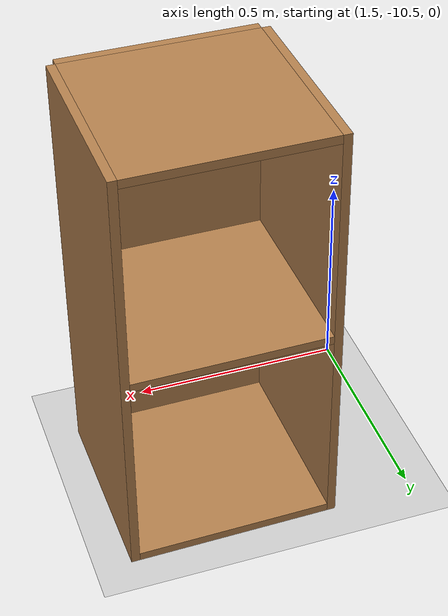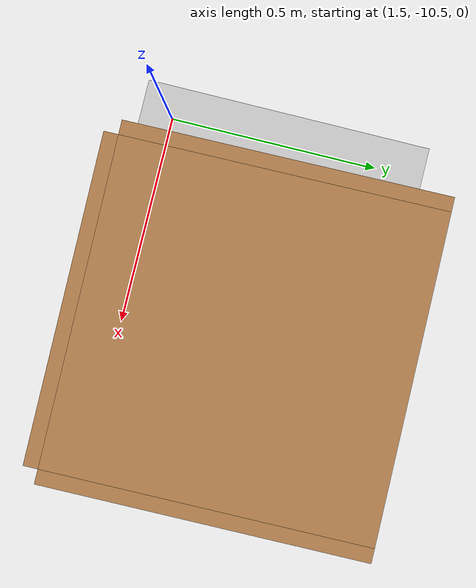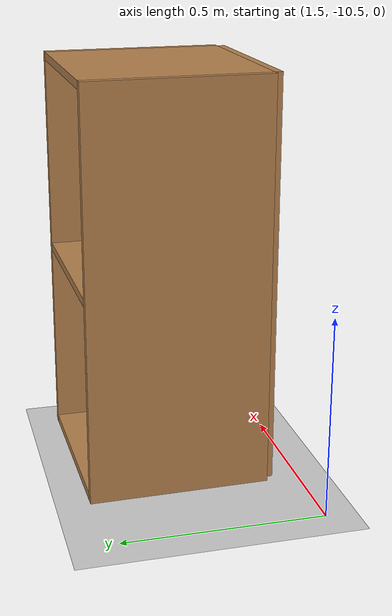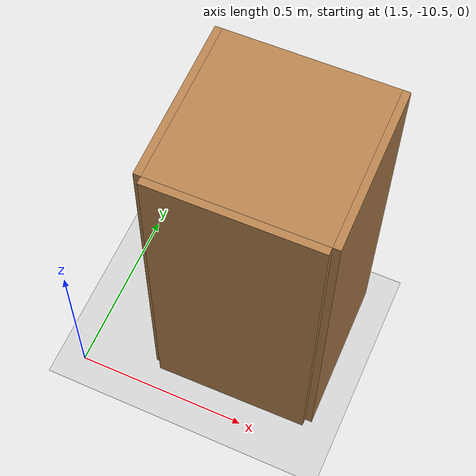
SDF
<sdf version="1.6">
 <world name="default">
  <model name="ground_plane">
   <static>1</static>
   <link name="link">
    <collision name="collision">
     <geometry><plane><normal>0 0 1</normal><size>100 100</size></plane></geometry>
     <surface><friction><ode><mu>100</mu><mu2>50</mu2></ode></friction></surface>
    </collision>
    <visual name="visual">
     <cast_shadows>0</cast_shadows>
     <geometry><plane><normal>0 0 1</normal><size>100 100</size></plane></geometry>
     <material>
      <script><uri>file://media/materials/scripts/gazebo.material</uri><name>Gazebo/Grey</name></script>
     </material>
    </visual>
   </link>
  </model>
  <model name="cabinet_3_clone_clone">
   <static>1</static>
   <link name="cabinet_bottom_plate">
    <inertial>
     <pose>0 0 -1 0 -0 0</pose>
     <inertia><ixx>2.05</ixx><ixy>0</ixy><ixz>0</ixz><iyy>2.05</iyy><iyz>0</iyz><izz>2.05</izz></inertia>
     <mass>25</mass>
    </inertial>
    <collision name="cabinet_bottom_plate_geom">
     <pose>0 0 0.01 0 -0 0</pose>
     <geometry><box><size>0.45 0.45 0.02</size></box></geometry>
    </collision>
    <visual name="cabinet_bottom_plate_geom_visual">
     <pose>0 0 0.01 0 -0 0</pose>
     <geometry><box><size>0.45 0.45 0.02</size></box></geometry>
     <material>
      <script><uri>file://media/materials/scripts/gazebo.material</uri><name>Gazebo/Wood</name></script>
     </material>
    </visual>
    <collision name="cabinet_bottom_plate_geom_cabinet_back_plate">
     <pose>0.235 0 0.51 0 -0 0</pose>
     <geometry><box><size>0.02 0.45 1.02</size></box></geometry>
    </collision>
    <visual name="cabinet_bottom_plate_geom_cabinet_back_plate_visual">
     <pose>0.235 0 0.51 0 -0 0</pose>
     <geometry><box><size>0.02 0.45 1.02</size></box></geometry>
     <material>
      <script><uri>file://media/materials/scripts/gazebo.material</uri><name>Gazebo/Wood</name></script>
     </material>
    </visual>
    <collision name="cabinet_bottom_plate_geom_cabinet_left_plate">
     <pose>0 0.235 0.51 0 -0 0</pose>
     <geometry><box><size>0.45 0.02 1.02</size></box></geometry>
    </collision>
    <visual name="cabinet_bottom_plate_geom_cabinet_left_plate_visual">
     <pose>0 0.235 0.51 0 -0 0</pose>
     <geometry><box><size>0.45 0.02 1.02</size></box></geometry>
     <material>
      <script><uri>file://media/materials/scripts/gazebo.material</uri><name>Gazebo/Wood</name></script>
     </material>
    </visual>
    <collision name="cabinet_bottom_plate_geom_cabinet_middle_plate">
     <pose>0 0 0.51 0 -0 0</pose>
     <geometry><box><size>0.45 0.45 0.02</size></box></geometry>
    </collision>
    <visual name="cabinet_bottom_plate_geom_cabinet_middle_plate_visual">
     <pose>0 0 0.51 0 -0 0</pose>
     <geometry><box><size>0.45 0.45 0.02</size></box></geometry>
     <material>
      <script><uri>file://media/materials/scripts/gazebo.material</uri><name>Gazebo/Wood</name></script>
     </material>
    </visual>
    <collision name="cabinet_bottom_plate_geom_cabinet_right_plate">
     <pose>0 -0.235 0.51 0 -0 0</pose>
     <geometry><box><size>0.45 0.02 1.02</size></box></geometry>
    </collision>
    <visual name="cabinet_bottom_plate_geom_cabinet_right_plate_visual">
     <pose>0 -0.235 0.51 0 -0 0</pose>
     <geometry><box><size>0.45 0.02 1.02</size></box></geometry>
     <material>
      <script><uri>file://media/materials/scripts/gazebo.material</uri><name>Gazebo/Wood</name></script>
     </material>
    </visual>
    <collision name="cabinet_bottom_plate_geom_cabinet_top_plate">
     <pose>0 0 1.01 0 -0 0</pose>
     <geometry><box><size>0.45 0.45 0.02</size></box></geometry>
    </collision>
    <visual name="cabinet_bottom_plate_geom_cabinet_top_plate_visual">
     <pose>0 0 1.01 0 -0 0</pose>
     <geometry><box><size>0.45 0.45 0.02</size></box></geometry>
     <material>
      <script><uri>file://media/materials/scripts/gazebo.material</uri><name>Gazebo/Wood</name></script>
     </material>
    </visual>
   </link>
   <pose>1.93927 -10.1899 0 0 0 -1.55805</pose>
  </model>
 </world>
</sdf>
